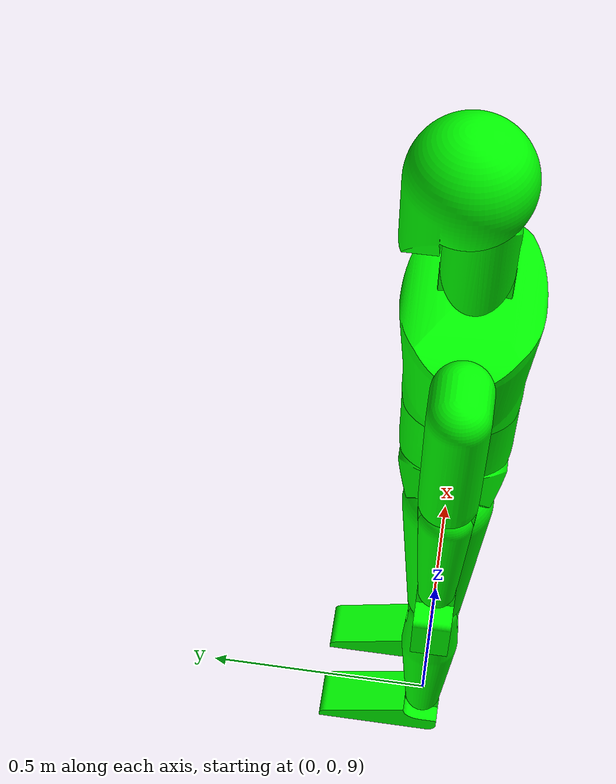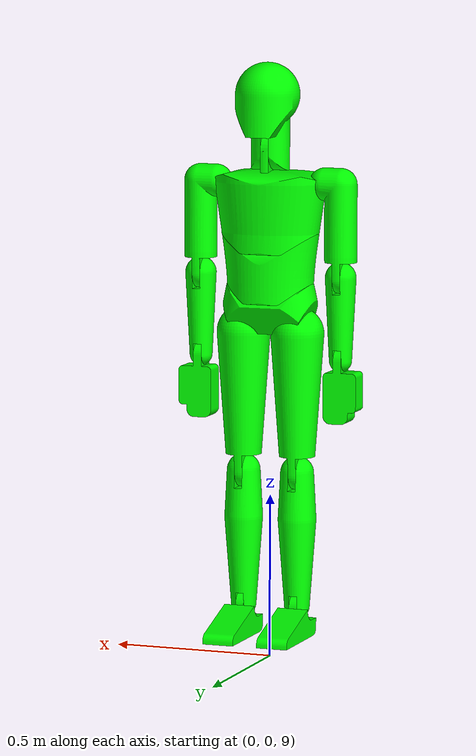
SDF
<?xml version="1.0" ?>
<!-- this was initially generated from ragdoll.urdf,
     but have sence been updated to turn off gravity for certain links
     and various tweaks -->

<sdf version="1.4">
    <model name="new_ragdoll">
        <pose>0.000000 0.000000 10.0 0.0 -1.570000 0.000000</pose>-->
        <link name="lower_body">
            <pose>0.000000 0.000000 0.000000 0.000000 -0.000000 0.000000</pose>
            <inertial>
                <pose>0.0762 0.000000 0.000000 0.000000 -0.000000 0.000000</pose>
                <inertia>
                    <ixx>0.1116</ixx>
                    <ixy>0.000000</ixy>
                    <ixz>0.000000</ixz>
                    <iyy>0.1028</iyy>
                    <iyz>0.000000</iyz>
                    <izz>0.1298</izz>
                </inertia>
                <mass>9.7</mass>
            </inertial>
            <collision name="lower_body_collision">
                <pose>0.000000 0.000000 0.000000 0.000000 -0.000000 0.000000</pose>
                <geometry>
                    <mesh>
                        <scale>1 1 1</scale>
                        <uri>model://Test_Lower_Body_m.STL</uri>
                    </mesh>
                </geometry>
                <surface>
                    <friction>
                        <ode>
                            <mu>1.000000</mu>
                            <mu2>1.000000</mu2>
                            <fdir1>0.000000 0.000000 0.000000</fdir1>
                            <slip1>0.000000</slip1>
                            <slip2>0.000000</slip2>
                        </ode>
                    </friction>
                    <bounce>
                        <restitution_coefficient>0.000000</restitution_coefficient>
                        <threshold>100000.000000</threshold>
                    </bounce>
                    <contact>
                        <ode>
                            <soft_cfm>0.0</soft_cfm>
                            <soft_erp>0.200000</soft_erp>
                            <kp>50000.000000</kp>
                            <kd>5000.000000</kd>-->
                            <max_vel>0.000000</max_vel>
                            <min_depth>0.001000</min_depth>
                        </ode>
                    </contact>
                </surface>
                <laser_retro>0.000000</laser_retro>
            </collision>
            <visual name="lower_body_visual">
                <pose>0.000000 0.000000 0.000000 0.000000 -0.000000 0.000000</pose>
                <geometry>
                    <mesh>
                        <scale>1 1 1</scale>
                        <uri>model://Test_Lower_Body_m.STL</uri>
                    </mesh>
                </geometry>
                <material>
                    <diffuse>0.0 1.0 0.0 1</diffuse>
                </material>
                <cast_shadows>0</cast_shadows>
                <laser_retro>0.000000</laser_retro>
                <transparency>0.000000</transparency>
            </visual>
            <sensor name='lower_body_tactile_sensor' type='contact'>
                <contact>
                    <collision>lower_body_collision</collision>
                    <topic>__default_topic__</topic>
                </contact>
                <plugin name="ros_tactile_plugin" filename="libros_tactile_plugin.so" />
                <always_on>1</always_on>
                <update_rate>100.0</update_rate>
                <visualize>false</visualize>
            </sensor>
            <gravity>1</gravity>
            <self_collide>0</self_collide>
            <kinematic>0</kinematic>
        </link>
        <link name="l_thigh">
            <pose>0.000000 0.000000 0.0864 0.000000 -0.000000 0.000000</pose>
            <inertial>
                <pose>-0.21336 0.000000 0.000000 0.000000 -0.000000 0.000000</pose>
                <inertia>
                    <ixx>0.1652</ixx>
                    <ixy>0.000000</ixy>
                    <ixz>0.000000</ixz>
                    <iyy>0.1652</iyy>
                    <iyz>0.000000</iyz>
                    <izz>0.0452</izz>
                </inertia>
                <mass>12.3</mass>
            </inertial>
            <collision name="l_thigh_collision">
                <pose>-0.21336 0.000000 -0.000000 0.000000 -0.000000 0.000000</pose>
                <geometry>
                    <mesh>
                        <scale>1 1 1</scale>
                        <uri>model://Test_Thigh_m.STL</uri>
                    </mesh>
                </geometry>
                <surface>
                    <friction>
                        <ode>
                            <mu>1.000000</mu>
                            <mu2>1.000000</mu2>
                            <fdir1>0.000000 0.000000 0.000000</fdir1>
                            <slip1>0.000000</slip1>
                            <slip2>0.000000</slip2>
                        </ode>
                    </friction>
                    <bounce>
                        <restitution_coefficient>0.000000</restitution_coefficient>
                        <threshold>100000.000000</threshold>
                    </bounce>
                    <contact>
                        <ode>
                            <soft_cfm>0.0</soft_cfm>
                            <soft_erp>0.200000</soft_erp>
                            <kp>50000.000000</kp>
                            <kd>5000.000000</kd>
                            <max_vel>0.000000</max_vel>
                            <min_depth>0.001000</min_depth>
                        </ode>
                    </contact>
                </surface>
                <laser_retro>0.000000</laser_retro>
            </collision>
            <visual name="l_thigh_visual">
                <pose>-0.21336 0.000000 -0.000000 0.000000 -0.000000 0.000000</pose>
                <geometry>
                    <mesh>
                        <scale>1 1 1</scale>
                        <uri>model://Test_Thigh_m.STL</uri>
                    </mesh>
                </geometry>
                <cast_shadows>0</cast_shadows>
                <laser_retro>0.000000</laser_retro>
                <transparency>0.000000</transparency>
                <material>
                    <diffuse>0.0 1.0 0.0 1</diffuse>
                </material>
            </visual>
            <sensor name='l_thigh_tactile_sensor' type='contact'>
                <contact>
                    <collision>l_thigh_collision</collision>
                    <topic>__default_topic__</topic>
                </contact>
                <plugin name="ros_tactile_plugin" filename="libros_tactile_plugin.so" />
                <always_on>1</always_on>
                <update_rate>100.0</update_rate>
                <visualize>false</visualize>
            </sensor>
            <gravity>1</gravity>
            <self_collide>0</self_collide>
            <kinematic>0</kinematic>
        </link>
        <link name="l_shin">
            <pose>-0.42672 -0.000000 0.0864 0.000000 -0.000000 0.000000</pose>
            <inertial>
                <pose>-0.20701 0.000000 -0.000000 0.000000 -0.000000 0.000000</pose>
                <inertia>
                    <ixx>0.0606</ixx>
                    <ixy>0.000000</ixy>
                    <ixz>0.000000</ixz>
                    <iyy>0.0606</iyy>
                    <iyz>0.000000</iyz>
                    <izz>0.0071</izz>
                </inertia>
                <mass>3.76</mass>
            </inertial>
            <collision name="l_shin_collision">
                <pose>-0.20701 0.000000 -0.000000 0.000000 -0.000000 0.000000</pose>
                <geometry>
                    <mesh>
                        <scale>1 1 1</scale>
                        <uri>model://Test_Shin_m.STL</uri>
                    </mesh>
                </geometry>
                <surface>
                    <friction>
                        <ode>
                            <mu>1.000000</mu>
                            <mu2>1.000000</mu2>
                            <fdir1>0.000000 0.000000 0.000000</fdir1>
                            <slip1>0.000000</slip1>
                            <slip2>0.000000</slip2>
                        </ode>
                    </friction>
                    <bounce>
                        <restitution_coefficient>0.000000</restitution_coefficient>
                        <threshold>100000.000000</threshold>
                    </bounce>
                    <contact>
                        <ode>
                            <soft_cfm>0.0</soft_cfm>
                            <soft_erp>0.200000</soft_erp>
                            <kp>50000.000000</kp>
                            <kd>5000.000000</kd>
                            <max_vel>0.000000</max_vel>
                            <min_depth>0.001000</min_depth>
                        </ode>
                    </contact>
                </surface>
                <laser_retro>0.000000</laser_retro>
            </collision>
            <visual name="l_shin_visual">
                <pose>-0.20701 0.000000 -0.000000 0.000000 -0.000000 0.000000</pose>
                <geometry>
                    <mesh>
                        <scale>1 1 1</scale>
                        <uri>model://Test_Shin_m.STL</uri>
                    </mesh>
                </geometry>
                <cast_shadows>0</cast_shadows>
                <laser_retro>0.000000</laser_retro>
                <transparency>0.000000</transparency>
                <material>
                    <diffuse>0.0 1.0 0.0 1</diffuse>
                </material>
            </visual>
            <sensor name='l_shin_tactile_sensor' type='contact'>
                <contact>
                    <collision>l_shin_collision</collision>
                    <topic>__default_topic__</topic>
                </contact>
                <plugin name="ros_tactile_plugin" filename="libros_tactile_plugin.so" />
                <always_on>1</always_on>
                <update_rate>100.0</update_rate>
                <visualize>false</visualize>
            </sensor>
            <gravity>1</gravity>
            <self_collide>0</self_collide>
            <kinematic>0</kinematic>
        </link>
        <link name="l_foot">
            <pose>-0.84074 -0.000000 0.0864 0.000000 -0.000000 0.000000</pose>
            <inertial>
                <pose>-0.059182 0.0508 -0.000000 0.000000 -0.000000 0.000000</pose>
                <inertia>
                    <ixx>0.0008</ixx>
                    <ixy>0.000000</ixy>
                    <ixz>0.000000</ixz>
                    <iyy>0.0044</iyy>
                    <iyz>0.000000</iyz>
                    <izz>0.0046</izz>
                </inertia>
                <mass>1.19</mass>
        </inertial>
            <collision name="l_foot_geom">
                <pose>0.000000 0.000000 -0.000000 0.000000 -0.000000 0.000000</pose>
                <geometry>
                    <mesh>
                        <scale>1 1 1</scale>
                        <uri>model://Test_Foot_m.STL</uri>
                    </mesh>
                </geometry>
                <surface>
                    <friction>
                        <ode>
                            <mu>1.000000</mu>
                            <mu2>1.000000</mu2>
                            <fdir1>0.000000 0.000000 0.000000</fdir1>
                            <slip1>0.000000</slip1>
                            <slip2>0.000000</slip2>
                        </ode>
                    </friction>
                    <bounce>
                        <restitution_coefficient>0.000000</restitution_coefficient>
                        <threshold>100000.000000</threshold>
                    </bounce>
                    <contact>
                        <ode>
                            <soft_cfm>0.0</soft_cfm>
                            <soft_erp>0.200000</soft_erp>
                            <kp>50000.000000</kp>
                            <kd>5000.000000</kd>
                            <max_vel>0.000000</max_vel>
                            <min_depth>0.001000</min_depth>
                        </ode>
                    </contact>
                </surface>
                <laser_retro>0.000000</laser_retro>
            </collision>
            <visual name="l_foot_geom_visual">
                <pose>0.000000 0.000000 -0.000000 0.000000 -0.000000 0.000000</pose>
                <geometry>
                    <mesh>
                        <scale>1 1 1</scale>
                        <uri>model://Test_Foot_m.STL</uri>
                    </mesh>
                </geometry>
                <cast_shadows>0</cast_shadows>
                <laser_retro>0.000000</laser_retro>
                <transparency>0.000000</transparency>
                <material>
                    <diffuse>0.0 1.0 0.0 1</diffuse>
                </material>
            </visual>
            <sensor name='l_foot_tactile_sensor' type='contact'>
                <contact>
                    <collision>l_foot_geom</collision>
                    <topic>__default_topic__</topic>
                </contact>
                <plugin name="ros_tactile_plugin" filename="libros_tactile_plugin.so" />
                <always_on>1</always_on>
                <update_rate>100.0</update_rate>
                <visualize>false</visualize>
            </sensor>
            <gravity>1</gravity>
            <self_collide>0</self_collide>
            <kinematic>0</kinematic>
        </link>
        <link name="r_thigh">
            <pose>0.000000 -0.000000 -0.0864 0.000000 -0.000000 0.000000</pose>
            <inertial>
                <pose>-0.21336 0.000000 0.000000 0.000000 -0.000000 0.000000</pose>
                <inertia>
                    <ixx>0.1652</ixx>
                    <ixy>0.000000</ixy>
                    <ixz>0.000000</ixz>
                    <iyy>0.1652</iyy>
                    <iyz>0.000000</iyz>
                    <izz>0.0452</izz>
                </inertia>
                <mass>12.3</mass>
            </inertial>
            <collision name="r_thigh_collision">
                <pose>-0.21336 0.000000 -0.000000 0.000000 -0.000000 0.000000</pose>
                <geometry>
                    <mesh>
                        <scale>1 1 1</scale>
                        <uri>model://Test_Thigh_m.STL</uri>
                    </mesh>
                </geometry>
                <surface>
                    <friction>
                        <ode>
                            <mu>1.000000</mu>
                            <mu2>1.000000</mu2>
                            <fdir1>0.000000 0.000000 0.000000</fdir1>
                            <slip1>0.000000</slip1>
                            <slip2>0.000000</slip2>
                        </ode>
                    </friction>
                    <bounce>
                        <restitution_coefficient>0.000000</restitution_coefficient>
                        <threshold>100000.000000</threshold>
                    </bounce>
                    <contact>
                        <ode>
                            <soft_cfm>0.0</soft_cfm>
                            <soft_erp>0.200000</soft_erp>
                            <kp>50000.000000</kp>
                            <kd>5000.000000</kd>
                            <max_vel>0.000000</max_vel>
                            <min_depth>0.001000</min_depth>
                        </ode>
                    </contact>
                </surface>
                <laser_retro>0.000000</laser_retro>
            </collision>
            <visual name="r_thigh_visual">
                <pose>-0.21336000 0.000000 -0.000000 0.000000 -0.000000 0.000000</pose>
                <geometry>
                    <mesh>
                        <scale>1 1 1</scale>
                        <uri>model://Test_Thigh_m.STL</uri>
                    </mesh>
                </geometry>
                <material>
                    <diffuse>0.0 1.0 0.0 1</diffuse>
                </material>
                <cast_shadows>0</cast_shadows>
                <laser_retro>0.000000</laser_retro>
                <transparency>0.000000</transparency>
            </visual>
            <sensor name='r_thigh_tactile_sensor' type='contact'>
                <contact>
                    <collision>r_thigh_collision</collision>
                    <topic>__default_topic__</topic>
                </contact>
                <plugin name="ros_tactile_plugin" filename="libros_tactile_plugin.so" />
                <always_on>1</always_on>
                <update_rate>100.0</update_rate>
                <visualize>false</visualize>
            </sensor>
            <gravity>1</gravity>
            <self_collide>0</self_collide>
            <kinematic>0</kinematic>
        </link>
        <link name="r_shin">
            <pose>-0.42672 -0.000000 -0.0864 0.000000 -0.000000 0.000000</pose>
            <inertial>
                <pose>-0.20701 0.000000 -0.000000 0.000000 -0.000000 0.000000</pose>
                <inertia>
                    <ixx>0.0606</ixx>
                    <ixy>0.000000</ixy>
                    <ixz>0.000000</ixz>
                    <iyy>0.0606</iyy>
                    <iyz>0.000000</iyz>
                    <izz>0.0071</izz>
                </inertia>
                <mass>3.76</mass>
            </inertial>
            <collision name="r_shin_collision">
                <pose>-0.20701 0.000000 -0.000000 0.000000 -0.000000 0.000000</pose>
                <geometry>
                    <mesh>
                        <scale>1 1 1</scale>
                        <uri>model://Test_Shin_m.STL</uri>
                    </mesh>
                </geometry>
                <surface>
                    <friction>
                        <ode>
                            <mu>1.000000</mu>
                            <mu2>1.000000</mu2>
                            <fdir1>0.000000 0.000000 0.000000</fdir1>
                            <slip1>0.000000</slip1>
                            <slip2>0.000000</slip2>
                        </ode>
                    </friction>
                    <bounce>
                        <restitution_coefficient>0.000000</restitution_coefficient>
                        <threshold>100000.000000</threshold>
                    </bounce>
                    <contact>
                        <ode>
                            <soft_cfm>0.0</soft_cfm>
                            <soft_erp>0.200000</soft_erp>
                            <kp>50000.000000</kp>
                            <kd>5000.000000</kd>
                            <max_vel>0.000000</max_vel>
                            <min_depth>0.001000</min_depth>
                        </ode>
                    </contact>
                </surface>
                <laser_retro>0.000000</laser_retro>
            </collision>
            <visual name="r_shin_visual">
                <pose>-0.20701 0.000000 -0.000000 0.000000 -0.000000 0.000000</pose>
                <geometry>
                    <mesh>
                        <scale>1 1 1</scale>
                        <uri>model://Test_Shin_m.STL</uri>
                    </mesh>
                </geometry>
                <material>
                    <diffuse>0.0 1.0 0.0 1</diffuse>
                </material>
                <cast_shadows>0</cast_shadows>
                <laser_retro>0.000000</laser_retro>
                <transparency>0.000000</transparency>
            </visual>
            <sensor name='r_shin_tactile_sensor' type='contact'>
                <contact>
                    <collision>r_shin_collision</collision>
                    <topic>__default_topic__</topic>
                </contact>
                <plugin name="ros_tactile_plugin" filename="libros_tactile_plugin.so" />
                <always_on>1</always_on>
                <update_rate>100.0</update_rate>
                <visualize>false</visualize>
            </sensor>
            <gravity>1</gravity>
            <self_collide>0</self_collide>
            <kinematic>0</kinematic>
        </link>
        <link name="r_foot">
            <pose>-0.84074 -0.000000 -0.0864 0.000000 -0.000000 0.000000</pose>
            <inertial>
                <pose>-0.059182 0.0508 -0.000000 0.000000 -0.000000 0.000000</pose>
                <inertia>
                    <ixx>0.0008</ixx>
                    <ixy>0.000000</ixy>
                    <ixz>0.000000</ixz>
                    <iyy>0.0044</iyy>
                    <iyz>0.000000</iyz>
                    <izz>0.0046</izz>
                </inertia>
                <mass>1.19</mass>
            </inertial>
            <collision name="r_foot_collision">
                <pose>0.000000 0.000000 -0.000000 0.000000 -0.000000 0.000000</pose>
                <geometry>
                    <mesh>
                        <scale>1 1 1</scale>
                        <uri>model://Test_Foot_m.STL</uri>
                    </mesh>
                </geometry>
                <surface>
                    <friction>
                        <ode>
                            <mu>1.000000</mu>
                            <mu2>1.000000</mu2>
                            <fdir1>0.000000 0.000000 0.000000</fdir1>
                            <slip1>0.000000</slip1>
                            <slip2>0.000000</slip2>
                        </ode>
                    </friction>
                    <bounce>
                        <restitution_coefficient>0.000000</restitution_coefficient>
                        <threshold>100000.000000</threshold>
                    </bounce>
                    <contact>
                        <ode>
                            <soft_cfm>0.0</soft_cfm>
                            <soft_erp>0.200000</soft_erp>
                            <kp>50000.000000</kp>
                            <kd>5000.000000</kd>
                            <max_vel>0.000000</max_vel>
                            <min_depth>0.001000</min_depth>
                        </ode>
                    </contact>
                </surface>
                <laser_retro>0.000000</laser_retro>
            </collision>
            <visual name="r_foot_visual">
                <pose>0.000000 0.000000 -0.000000 0.000000 -0.000000 0.000000</pose>
                <geometry>
                    <mesh>
                        <scale>1 1 1</scale>
                        <uri>model://Test_Foot_m.STL</uri>
                    </mesh>
                </geometry>
                <material>
                    <diffuse>0.0 1.0 0.0 1</diffuse>
                </material>
                <cast_shadows>0</cast_shadows>
                <laser_retro>0.000000</laser_retro>
                <transparency>0.000000</transparency>
            </visual>
            <sensor name='r_foot_tactile_sensor' type='contact'>
                <contact>
                    <collision>r_foot_collision</collision>
                    <topic>__default_topic__</topic>
                </contact>
                <plugin name="ros_tactile_plugin" filename="libros_tactile_plugin.so" />
                <always_on>1</always_on>
                <update_rate>100.0</update_rate>
                <visualize>false</visualize>
            </sensor>
            <gravity>1</gravity>
            <self_collide>0</self_collide>
            <kinematic>0</kinematic>
        </link>
        <link name="middle_body">
            <pose>0.05207 0.000000 0.000000 0.000000 -0.000000 0.000000</pose>
            <inertial>
                <pose>0.1765300 0.000000 0.000000 0.000000 -0.000000 0.000000</pose>
                <inertia>
                    <ixx>0.1116</ixx>
                    <ixy>0.000000</ixy>
                    <ixz>0.000000</ixz>
                    <iyy>0.1028</iyy>
                    <iyz>0.000000</iyz>
                    <izz>0.1298</izz>
                </inertia>
                <mass>14.2</mass>
            </inertial>
            <collision name="middle_body_collision">
                <pose>0.000000 0.000000 0.000000 0.000000 -0.000000 0.000000</pose>
                <geometry>
                    <mesh>
                        <scale>1 1 1</scale>
                        <uri>model://Test_Middle_Body_m.STL</uri>
                    </mesh>
                </geometry>
                <surface>
                    <friction>
                        <ode>
                            <mu>1.000000</mu>
                            <mu2>1.000000</mu2>
                            <fdir1>0.000000 0.000000 0.000000</fdir1>
                            <slip1>0.000000</slip1>
                            <slip2>0.000000</slip2>
                        </ode>
                    </friction>
                    <bounce>
                        <restitution_coefficient>0.000000</restitution_coefficient>
                        <threshold>100000.000000</threshold>
                    </bounce>
                    <contact>
                        <ode>
                            <soft_cfm>0.0</soft_cfm>
                            <soft_erp>0.200000</soft_erp>
                            <kp>50000.000000</kp>
                            <kd>5000.000000</kd>
                            <max_vel>0.000000</max_vel>
                            <min_depth>0.001000</min_depth>
                        </ode>
                    </contact>
                </surface>
                <laser_retro>0.000000</laser_retro>
            </collision>
            <visual name="middle_body_visual">
                <pose>0.000000 0.000000 0.000000 0.000000 -0.000000 0.000000</pose>
                <geometry>
                    <mesh>
                        <scale>1 1 1</scale>
                        <uri>model://Test_Middle_Body_m.STL</uri>
                    </mesh>
                </geometry>
                <material>
                    <diffuse>0.0 1.0 0.0 1</diffuse>
                </material>
                <cast_shadows>0</cast_shadows>
                <laser_retro>0.000000</laser_retro>
                <transparency>0.000000</transparency>
            </visual>
            <sensor name='middle_body_tactile_sensor' type='contact'>
                <contact>
                    <collision>middle_body_collision</collision>
                    <topic>__default_topic__</topic>
                </contact>
                <plugin name="ros_tactile_plugin" filename="libros_tactile_plugin.so" />
                <always_on>1</always_on>
                <update_rate>100.0</update_rate>
                <visualize>false</visualize>
            </sensor>
            <gravity>1</gravity>
            <self_collide>0</self_collide>
            <kinematic>0</kinematic>
        </link>
        <link name="upper_body">
            <pose>0.2032 0.000000 0.000000 0.000000 -0.000000 0.000000</pose>
            <inertial>
                <pose>0.1778 0.000000 0.000000 0.000000 -0.000000 0.000000</pose>
                <inertia>
                    <ixx>0.1116</ixx>
                    <ixy>0.000000</ixy>
                    <ixz>0.000000</ixz>
                    <iyy>0.1028</iyy>
                    <iyz>0.000000</iyz>
                    <izz>0.1298</izz>
                </inertia>
                <mass>12.82</mass>
            </inertial>
            <collision name="upper_body_collision">
                <pose>0.000000 0.000000 0.000000 0.000000 -0.000000 0.000000</pose>
                <geometry>
                    <mesh>
                        <scale>1 1 1</scale>
                        <uri>model://Test_Upper_Body_m.STL</uri>
                    </mesh>
                </geometry>
                <surface>
                    <friction>
                        <ode>
                            <mu>1.000000</mu>
                            <mu2>1.000000</mu2>
                            <fdir1>0.000000 0.000000 0.000000</fdir1>
                            <slip1>0.000000</slip1>
                            <slip2>0.000000</slip2>
                        </ode>
                    </friction>
                    <bounce>
                        <restitution_coefficient>0.000000</restitution_coefficient>
                        <threshold>100000.000000</threshold>
                    </bounce>
                    <contact>
                        <ode>
                            <soft_cfm>0.0</soft_cfm>
                            <soft_erp>0.200000</soft_erp>
                            <kp>50000.000000</kp>
                            <kd>5000.000000</kd>
                            <max_vel>0.000000</max_vel>
                            <min_depth>0.001000</min_depth>
                        </ode>
                    </contact>
                </surface>
                <laser_retro>0.000000</laser_retro>
            </collision>
            <visual name="upper_body_visual">
                <pose>0.000000 0.000000 0.000000 0.000000 -0.000000 0.000000</pose>
                <geometry>
                    <mesh>
                        <scale>1 1 1</scale>
                        <uri>model://Test_Upper_Body_m.STL</uri>
                    </mesh>
                </geometry>
                <material>
                    <diffuse>0.0 1.0 0.0 1</diffuse>
                </material>
                <cast_shadows>0</cast_shadows>
                <laser_retro>0.000000</laser_retro>
                <transparency>0.000000</transparency>
            </visual>
            <sensor name='upper_body_tactile_sensor' type='contact'>
                <contact>
                    <collision>upper_body_collision</collision>
                    <topic>__default_topic__</topic>
                </contact>
                <plugin name="ros_tactile_plugin" filename="libros_tactile_plugin.so" />
                <always_on>1</always_on>
                <update_rate>100.0</update_rate>
                <visualize>false</visualize>
            </sensor>
            <gravity>1</gravity>
            <self_collide>0</self_collide>
            <kinematic>0</kinematic>
        </link>
        <link name="l_arm">
            <pose>0.4572 0.000000 0.17526 0 -0.000000 0.000000</pose>
            <inertial>
                <pose>-0.14097 0.000000 0.04953 0.000000 -0.000000 0.000000</pose>
                <inertia>
                    <ixx>0.0141</ixx>
                    <ixy>0.000000</ixy>
                    <ixz>0.000000</ixz>
                    <iyy>0.0141</iyy>
                    <iyz>0.000000</iyz>
                    <izz>0.0029</izz>
                </inertia>
                <mass>2.35</mass>
            </inertial>
            <collision name="l_arm_collision">
                <pose>-0.14097 0.000000 0.04953 3.14 -0.000000 0.000000</pose>
                <geometry>
                    <mesh>
                        <scale>1 1 1</scale>
                        <uri>model://Test_Arm_m.STL</uri>
                    </mesh>
                </geometry>
                <surface>
                    <friction>
                        <ode>
                            <mu>1.000000</mu>
                            <mu2>1.000000</mu2>
                            <fdir1>0.000000 0.000000 0.000000</fdir1>
                            <slip1>0.000000</slip1>
                            <slip2>0.000000</slip2>
                        </ode>
                    </friction>
                    <bounce>
                        <restitution_coefficient>0.000000</restitution_coefficient>
                        <threshold>100000.000000</threshold>
                    </bounce>
                    <contact>
                        <ode>
                            <soft_cfm>0.0</soft_cfm>
                            <soft_erp>0.200000</soft_erp>
                            <kp>50000.000000</kp>
                            <kd>5000.000000</kd>
                            <max_vel>0.000000</max_vel>
                            <min_depth>0.001000</min_depth>
                        </ode>
                    </contact>
                </surface>
                <laser_retro>0.000000</laser_retro>
            </collision>
            <visual name="l_arm_visual">
                <pose>-0.14097 0.000000 0.04953 3.14 -0.000000 0.000000</pose>
                <geometry>
                    <mesh>
                        <scale>1 1 1</scale>
                        <uri>model://Test_Arm_m.STL</uri>
                    </mesh>
                </geometry>
                <material>
                    <diffuse>0.0 1.0 0.0 1</diffuse>
                </material>
                <cast_shadows>0</cast_shadows>
                <laser_retro>0.000000</laser_retro>
                <transparency>0.000000</transparency>
            </visual>
            <gravity>1</gravity>
            <self_collide>0</self_collide>
            <kinematic>0</kinematic>
        </link>
        <link name="l_wrist">
            <pose>0.1752 0.000000 0.22479 0.000000 -0.000000 0.000000</pose>
            <inertial>
                <pose>-0.125700 -0.000000 0.000000 0.000000 -0.000000 0.000000</pose>
                <inertia>
                    <ixx>0.009</ixx>
                    <ixy>0.000000</ixy>
                    <ixz>0.000000</ixz>
                    <iyy>0.009</iyy>
                    <iyz>0.000000</iyz>
                    <izz>0.0014</izz>
                </inertia>
                <mass>1.4</mass>
            </inertial>
            <collision name="l_wrist_collision">
                <pose>-0.125700 -0.000000 0.000000 3.140000 -0.000000 0.000000</pose>
                <geometry>
                    <mesh>
                        <scale>1 1 1</scale>
                        <uri>model://Test_Wrist_m.STL</uri>
                    </mesh>
                </geometry>
                <surface>
                    <friction>
                        <ode>
                            <mu>1.000000</mu>
                            <mu2>1.000000</mu2>
                            <fdir1>0.000000 0.000000 0.000000</fdir1>
                            <slip1>0.000000</slip1>
                            <slip2>0.000000</slip2>
                        </ode>
                    </friction>
                    <bounce>
                        <restitution_coefficient>0.000000</restitution_coefficient>
                        <threshold>100000.000000</threshold>
                    </bounce>
                    <contact>
                        <ode>
                            <soft_cfm>0.0</soft_cfm>
                            <soft_erp>0.200000</soft_erp>
                            <kp>50000.000000</kp>
                            <kd>5000.000000</kd>
                            <max_vel>0.000000</max_vel>
                            <min_depth>0.001000</min_depth>
                        </ode>
                    </contact>
                </surface>
                <laser_retro>0.000000</laser_retro>
            </collision>
            <visual name="l_wrist_visual">
                <pose>-0.125700 -0.000000 0.000000 3.140000 -0.000000 0.000000</pose>
                <geometry>
                    <mesh>
                        <scale>1 1 1</scale>
                        <uri>model://Test_Wrist_m.STL</uri>
                    </mesh>
                </geometry>
                <material>
                    <diffuse>0.0 1.0 0.0 1</diffuse>
                </material>
                <cast_shadows>0</cast_shadows>
                <laser_retro>0.000000</laser_retro>
                <transparency>0.000000</transparency>
            </visual>
            <gravity>1</gravity>
            <self_collide>0</self_collide>
            <kinematic>0</kinematic>
        </link>
        <link name="l_hand">
            <pose>-0.0763 0.000000 0.22479 0.000000 -0.000000 0.000000</pose>
            <inertial>
                <pose>-0.105000 -0.000000 -0.000000 0.000000 -0.000000 0.000000</pose>
                <inertia>
                    <ixx>0.0013</ixx>
                    <ixy>0.000000</ixy>
                    <ixz>0.000000</ixz>
                    <iyy>0.0011</iyy>
                    <iyz>0.000000</iyz>
                    <izz>0.0004</izz>
                </inertia>
                <mass>0.5</mass>
            </inertial>
            <collision name="l_hand_collision">
                <pose>0.000000 -0.000000 -0.000000 3.140000 -0.000000 0.000000</pose>
                <geometry>
                    <mesh>
                        <scale>1 1 1</scale>
                        <uri>model://Test_Hand_m.STL</uri>
                    </mesh>
                </geometry>
                <surface>
                    <friction>
                        <ode>
                            <mu>1.000000</mu>
                            <mu2>1.000000</mu2>
                            <fdir1>0.000000 0.000000 0.000000</fdir1>
                            <slip1>0.000000</slip1>
                            <slip2>0.000000</slip2>
                        </ode>
                    </friction>
                    <bounce>
                        <restitution_coefficient>0.000000</restitution_coefficient>
                        <threshold>100000.000000</threshold>
                    </bounce>
                    <contact>
                        <ode>
                            <soft_cfm>0.0</soft_cfm>
                            <soft_erp>0.200000</soft_erp>
                            <kp>50000.000000</kp>
                            <kd>5000.000000</kd>
                            <max_vel>0.000000</max_vel>
                            <min_depth>0.001000</min_depth>
                        </ode>
                    </contact>
                </surface>
                <laser_retro>0.000000</laser_retro>
            </collision>
            <visual name="l_hand_visual">
                <pose>0.000000 -0.000000 -0.000000 3.140000 -0.000000 0.000000</pose>
                <geometry>
                    <mesh>
                        <scale>1 1 1</scale>
                        <uri>model://Test_Hand_m.STL</uri>
                    </mesh>
                </geometry>
                <material>
                    <diffuse>0.0 1.0 0.0 1</diffuse>
                </material>
                <cast_shadows>0</cast_shadows>
                <laser_retro>0.000000</laser_retro>
                <transparency>0.000000</transparency>
            </visual>
            <gravity>1</gravity>
            <self_collide>0</self_collide>
            <kinematic>0</kinematic>
        </link>
        <link name="neck">
            <pose>0.55372 0.000000 0.000000 0.000000 -0.000000 0.000000</pose>
            <inertial>
                <pose>0.065405 0.0 0.000000 0.000000 -0.000000 0.000000</pose>
                <inertia>
                    <ixx>0.0018</ixx>
                    <ixy>0.000000</ixy>
                    <ixz>0.000000</ixz>
                    <iyy>0.0022</iyy>
                    <iyz>0.000000</iyz>
                    <izz>0.0028</izz>
                </inertia>
                <mass>1.03</mass>
            </inertial>
            <collision name="neck_collision">
                <pose>0.000000 0.000000 0.000000 0.000000 -0.000000 0.000000</pose>
                <geometry>
                    <mesh>
                        <scale>1 1 1</scale>
                        <uri>model://Test_Neck_m.STL</uri>
                    </mesh>
                </geometry>
                <surface>
                    <friction>
                        <ode>
                            <mu>1.000000</mu>
                            <mu2>1.000000</mu2>
                            <fdir1>0.000000 0.000000 0.000000</fdir1>
                            <slip1>0.000000</slip1>
                            <slip2>0.000000</slip2>
                        </ode>
                    </friction>
                    <bounce>
                        <restitution_coefficient>0.000000</restitution_coefficient>
                        <threshold>100000.000000</threshold>
                    </bounce>
                    <contact>
                        <ode>
                            <soft_cfm>0.0</soft_cfm>
                            <soft_erp>0.200000</soft_erp>
                            <kp>50000.000000</kp>
                            <kd>5000.000000</kd>
                            <max_vel>0.000000</max_vel>
                            <min_depth>0.001000</min_depth>
                        </ode>
                    </contact>
                </surface>
                <laser_retro>0.000000</laser_retro>
            </collision>
            <visual name="neck_geom_visual">
                <pose>0.000000 0.000000 0.000000 0.000000 -0.000000 0.000000</pose>
                <geometry>
                    <mesh>
                        <scale>1 1 1</scale>
                        <uri>model://Test_Neck_m.STL</uri>
                    </mesh>
                </geometry>
                <material>
                    <diffuse>0.0 1.0 0.0 1</diffuse>
                </material>
                <cast_shadows>0</cast_shadows>
                <laser_retro>0.000000</laser_retro>
                <transparency>0.000000</transparency>
            </visual>
            <sensor name='neck_tactile_sensor' type='contact'>
                <contact>
                    <collision>neck_collision</collision>
                    <topic>__default_topic__</topic>
                </contact>
                <plugin name="ros_tactile_plugin" filename="libros_tactile_plugin.so" />
                <always_on>1</always_on>
                <update_rate>100.0</update_rate>
                <visualize>false</visualize>
            </sensor>
            <gravity>1</gravity>
            <self_collide>0</self_collide>
            <kinematic>0</kinematic>
        </link>
        <link name="head">
            <pose>0.6261 0.000000 0.000000 0.000000 0.000 0.000000</pose>
            <inertial>
                <pose>0.09779 0.0508 0.000000 0.000000 -0.000000 0.000000</pose>
                <inertia>
                    <ixx>0.0206</ixx>
                    <ixy>0.000000</ixy>
                    <ixz>0.000000</ixz>
                    <iyy>0.0235</iyy>
                    <iyz>0.000000</iyz>
                    <izz>0.0153</izz>
                </inertia>
                <mass>6.02</mass>
            </inertial>
            <collision name="head_collision">
                <pose>0.000000 0.000000 0.000000 0.000000 3.140000 0.000000</pose>
                <geometry>
                    <mesh>
                        <scale>1 1 1</scale>
                        <uri>model://Test_Head_m.STL</uri>
                    </mesh>
                </geometry>
                <surface>
                    <friction>
                        <ode>
                            <mu>1.000000</mu>
                            <mu2>1.000000</mu2>
                            <fdir1>0.000000 0.000000 0.000000</fdir1>
                            <slip1>0.000000</slip1>
                            <slip2>0.000000</slip2>
                        </ode>
                    </friction>
                    <bounce>
                        <restitution_coefficient>0.000000</restitution_coefficient>
                        <threshold>100000.000000</threshold>
                    </bounce>
                    <contact>
                        <ode>
                            <soft_cfm>0.0</soft_cfm>
                            <soft_erp>0.200000</soft_erp>
                            <kp>50000.000000</kp>
                            <kd>5000.000000</kd>
                            <max_vel>0.000000</max_vel>
                            <min_depth>0.001000</min_depth>
                        </ode>
                    </contact>
                </surface>
                <laser_retro>0.000000</laser_retro>
            </collision>
            <visual name="head_visual">
                <pose>0.000000 0.000000 0.000000 0.000000 3.140000 0.000000</pose>
                <geometry>
                    <mesh>
                        <scale>1 1 1</scale>
                        <uri>model://Test_Head_m.STL</uri>
                    </mesh>
                </geometry>
                <material>
                    <diffuse>0.0 1.0 0.0 1</diffuse>
                </material>
                <cast_shadows>0</cast_shadows>
                <laser_retro>0.000000</laser_retro>
                <transparency>0.000000</transparency>
            </visual>
            <sensor name='head_tactile_sensor' type='contact'>
                <contact>
                    <collision>head_collision</collision>
                    <topic>__default_topic__</topic>
                </contact>
                <plugin name="ros_tactile_plugin" filename="libros_tactile_plugin.so" />
                <always_on>1</always_on>
                <update_rate>100.0</update_rate>
                <visualize>false</visualize>
            </sensor>
            <gravity>1</gravity>
            <self_collide>0</self_collide>
            <kinematic>0</kinematic>
        </link>
        <link name="r_arm">
            <pose>0.4572 0.000000 -0.17526 0.000000 -0.000000 0.000000</pose>
            <inertial>
                <pose>-0.141005 0.000000 -0.04953 0.0 -0.000000 0.000000</pose>
                <inertia>
                    <ixx>0.0141</ixx>
                    <ixy>0.000000</ixy>
                    <ixz>0.000000</ixz>
                    <iyy>0.0141</iyy>
                    <iyz>0.000000</iyz>
                    <izz>0.0029</izz>
                </inertia>
                <mass>2.35</mass>
            </inertial>
            <collision name="r_arm_collision">
                <pose>-0.141005 0.000000 -0.04953 0.0 -0.000000 0.000000</pose>
                <geometry>
                    <mesh>
                        <scale>1 1 1</scale>
                        <uri>model://Test_Arm_m.STL</uri>
                    </mesh>
                </geometry>
                <surface>
                    <friction>
                        <ode>
                            <mu>1.000000</mu>
                            <mu2>1.000000</mu2>
                            <fdir1>0.000000 0.000000 0.000000</fdir1>
                            <slip1>0.000000</slip1>
                            <slip2>0.000000</slip2>
                        </ode>
                    </friction>
                    <bounce>
                        <restitution_coefficient>0.000000</restitution_coefficient>
                        <threshold>100000.000000</threshold>
                    </bounce>
                    <contact>
                        <ode>
                            <soft_cfm>0.0</soft_cfm>
                            <soft_erp>0.200000</soft_erp>
                            <kp>50000.000000</kp>
                            <kd>5000.000000</kd>
                            <max_vel>0.000000</max_vel>
                            <min_depth>0.001000</min_depth>
                        </ode>
                    </contact>
                </surface>
                <laser_retro>0.000000</laser_retro>
            </collision>
            <visual name="r_arm_visual">
                <pose>-0.141005 0.000000 -0.04953 0.0 -0.000000 0.000000</pose>
                <geometry>
                    <mesh>
                        <scale>1 1 1</scale>
                        <uri>model://Test_Arm_m.STL</uri>
                    </mesh>
                </geometry>
                <material>
                    <diffuse>0.0 1.0 0.0 1</diffuse>
                </material>
                <cast_shadows>0</cast_shadows>
                <laser_retro>0.000000</laser_retro>
                <transparency>0.000000</transparency>
            </visual>
            <gravity>1</gravity>
            <self_collide>0</self_collide>
            <kinematic>0</kinematic>
        </link>
        <link name="r_wrist">
            <pose>0.1752 0.000000 -0.22479 0.000000 -0.000000 0.000000</pose>
            <inertial>
                <pose>-0.125700 -0.000000 0.000000 0.000000 -0.000000 0.000000</pose>
                <inertia>
                    <ixx>0.009</ixx>
                    <ixy>0.000000</ixy>
                    <ixz>0.000000</ixz>
                    <iyy>0.009</iyy>
                    <iyz>0.000000</iyz>
                    <izz>0.0014</izz>
                </inertia>
                <mass>1.4</mass>
            </inertial>
            <collision name="r_wrist_collision">
                <pose>-0.125700 -0.000000 0.000000 0.000000 -0.000000 0.000000</pose>
                <geometry>
                    <mesh>
                        <scale>1 1 1</scale>
                        <uri>model://Test_Wrist_m.STL</uri>
                    </mesh>
                </geometry>
                <surface>
                    <friction>
                        <ode>
                            <mu>1.000000</mu>
                            <mu2>1.000000</mu2>
                            <fdir1>0.000000 0.000000 0.000000</fdir1>
                            <slip1>0.000000</slip1>
                            <slip2>0.000000</slip2>
                        </ode>
                    </friction>
                    <bounce>
                        <restitution_coefficient>0.000000</restitution_coefficient>
                        <threshold>100000.000000</threshold>
                    </bounce>
                    <contact>
                        <ode>
                            <soft_cfm>0.0</soft_cfm>
                            <soft_erp>0.200000</soft_erp>
                            <kp>50000.000000</kp>
                            <kd>5000.000000</kd>
                            <max_vel>0.000000</max_vel>
                            <min_depth>0.001000</min_depth>
                        </ode>
                    </contact>
                </surface>
                <laser_retro>0.000000</laser_retro>
            </collision>
            <visual name="r_wrist_visual">
                <pose>-0.125700 -0.000000 0.000000 0.000000 -0.000000 0.000000</pose>
                <geometry>
                    <mesh>
                        <scale>1 1 1</scale>
                        <uri>model://Test_Wrist_m.STL</uri>
                    </mesh>
                </geometry>
                <material>
                    <diffuse>0.0 1.0 0.0 1</diffuse>
                </material>
                <cast_shadows>0</cast_shadows>
                <laser_retro>0.000000</laser_retro>
                <transparency>0.000000</transparency>
            </visual>
            <gravity>1</gravity>
            <self_collide>0</self_collide>
            <kinematic>0</kinematic>
        </link>
        <link name="r_hand">
            <pose>-0.0763 0.000000 -0.22479 0.000000 -0.000000 0.000000</pose>
            <inertial>
                <pose>-0.105000 -0.000000 -0.000000 0.000000 -0.000000 0.000000</pose>
                <inertia>
                    <ixx>0.0013</ixx>
                    <ixy>0.000000</ixy>
                    <ixz>0.000000</ixz>
                    <iyy>0.0011</iyy>
                    <iyz>0.000000</iyz>
                    <izz>0.0004</izz>
                </inertia>
                <mass>0.5</mass>
            </inertial>
            <collision name="r_hand_collision">
                <pose>0.000000 -0.000000 -0.000000 0.000000 -0.000000 0.000000</pose>
                <geometry>
                    <mesh>
                        <scale>1 1 1</scale>
                        <uri>model://Test_Hand_m.STL</uri>
                    </mesh>
                </geometry>
                <surface>
                    <friction>
                        <ode>
                            <mu>1.000000</mu>
                            <mu2>1.000000</mu2>
                            <fdir1>0.000000 0.000000 0.000000</fdir1>
                            <slip1>0.000000</slip1>
                            <slip2>0.000000</slip2>
                        </ode>
                    </friction>
                    <bounce>
                        <restitution_coefficient>0.000000</restitution_coefficient>
                        <threshold>100000.000000</threshold>
                    </bounce>
                    <contact>
                        <ode>
                            <soft_cfm>0.0</soft_cfm>
                            <soft_erp>0.200000</soft_erp>
                            <kp>50000.000000</kp>
                            <kd>5000.000000</kd>
                            <max_vel>0.000000</max_vel>
                            <min_depth>0.001000</min_depth>
                        </ode>
                    </contact>
                </surface>
                <laser_retro>0.000000</laser_retro>
            </collision>
            <visual name="r_hand_visual">
                <pose>0.000000 -0.000000 -0.000000 0.000000 -0.000000 0.000000</pose>
                <geometry>
                    <mesh>
                        <scale>1 1 1</scale>
                        <uri>model://Test_Hand_m.STL</uri>
                    </mesh>
                </geometry>
                <material>
                    <diffuse>0.0 1.0 0.0 1</diffuse>
                </material>
                <cast_shadows>0</cast_shadows>
                <laser_retro>0.000000</laser_retro>
                <transparency>0.000000</transparency>
            </visual>
            <gravity>1</gravity>
            <self_collide>0</self_collide>
            <kinematic>0</kinematic>
        </link>
<!--Virtual Link-->
    <link name="v_r_arm">
        <pose>0.4572 0.000000 -0.17526 0.000000 -0.000000 0.000000</pose>
        <collision name="v_r_arm_collision">
            <geometry>
                <box>
                    <size>0.0 0.0 0.0</size>
                </box>
            </geometry>
        </collision>
    </link>
    <link name="v_l_arm">
        <pose>0.4572 0.000000 0.17526 3.140000 -0.000000 0.000000</pose>
        <collision name="v_l_arm_collision">
            <geometry>
                <box>
                    <size>0.0 0.0 0.0</size>
                </box>
            </geometry>
        </collision>
    </link>
    <link name="v_l_thigh">
        <pose>0.000000 0.000000 0.0864 0.000000 -0.000000 0.000000</pose>
        <collision name="v_l_thigh_collision">
            <geometry>
                <box>
                    <size>0.0 0.0 0.0</size>
                </box>
            </geometry>
        </collision>
    </link>
    <link name="v_r_thigh">
        <pose>0.000000 0.000000 -0.0864 0.000000 -0.000000 0.000000</pose>
        <collision name="v_r_thigh_collision">
            <geometry>
                <box>
                    <size>0.0 0.0 0.0</size>
                </box>
            </geometry>
        </collision>
    </link>
        <joint name="l_thigh_joint" type="revolute">
            <child>v_l_thigh</child>
            <parent>lower_body</parent>
            <axis>
                <xyz>0.000000 0.000000 1.000000</xyz>
                <limit>
                    <lower>-2.051</lower>
                    <upper>0.785</upper>
                </limit>
                <dynamics>
                    <damping>1.000000</damping>
                </dynamics>
            </axis>
    </joint>
        <joint name="L_thigh_joint2" type="revolute">
            <child>l_thigh</child>
            <parent>v_l_thigh</parent>
            <axis>
                <xyz>0.000000 1.000000 0.000000</xyz>
                <limit>
                    <lower>0.</lower>
                    <upper>0.</upper>
                </limit>
                <dynamics>
                    <damping>1.000000</damping>
                </dynamics>
            </axis>
    </joint>
        <joint name="l_shin_joint" type="revolute">
        <child>l_shin</child>
            <parent>l_thigh</parent>
            <axis>
                <xyz>0.000000 0.000000 1.000000</xyz>
                <limit>
            <lower>0.</lower>
                    <upper>1.824</upper>
                </limit>
                <dynamics>
                    <damping>1.000000</damping>
                </dynamics>
            </axis>
        </joint>
        <joint name="l_foot_joint" type="revolute">
        <child>l_foot</child>
            <parent>l_shin</parent>
            <axis>
                <xyz>0.000000 0.000000 1.000000</xyz>
                <limit>
                    <lower>-0.410</lower>
                    <upper>0.633</upper>
        </limit>
                <dynamics>
                    <damping>1.000000</damping>
                </dynamics>
            </axis>
        </joint>
        <joint name="r_thigh_joint" type="revolute">
        <child>v_r_thigh</child>
            <parent>lower_body</parent>
            <axis>
                <xyz>0.000000 0.000000 1.000000</xyz>
                <limit>
                    <lower>-2.051</lower>
                    <upper>0.785</upper>
        </limit>
                <dynamics>
                    <damping>1.000000</damping>
                </dynamics>
            </axis>
    </joint>
       <joint name="R_thigh_joint2" type="revolute">
            <child>r_thigh</child>
            <parent>v_r_thigh</parent>
            <axis>
                <xyz>0.000000 1.000000 0.000000</xyz>
                <limit>
                    <lower>0.</lower>
                    <upper>0.</upper>
                </limit>
                <dynamics>
                    <damping>1.000000</damping>
                </dynamics>
            </axis>
    </joint>
        <joint name="r_shin_joint" type="revolute">
        <child>r_shin</child>
            <parent>r_thigh</parent>
            <axis>
                <xyz>0.000000 0.000000 1.000000</xyz>
                <limit>
                    <lower>0.</lower>
                    <upper>1.824</upper>
        </limit>
                <dynamics>
                    <damping>1.000000</damping>
                </dynamics>
            </axis>
        </joint>
        <joint name="r_foot_joint" type="revolute">
        <child>r_foot</child>
            <parent>r_shin</parent>
            <axis>
                <xyz>0.000000 0.000000 1.000000</xyz>
                <limit>
                    <lower>-0.410</lower>
                    <upper>0.633</upper>
        </limit>
                <dynamics>
                    <damping>1.000000</damping>
                </dynamics>
            </axis>
        </joint>
        <joint name="middle_body_joint" type="revolute">
        <child>middle_body</child>
            <parent>lower_body</parent>
            <axis>
                <xyz>0.000000 0.000000 1.000000</xyz>
                <limit>
                    <lower>-0.262</lower>
                    <upper>0.611</upper>
                </limit>
                <dynamics>
                    <damping>0.000000</damping>
                </dynamics>
            </axis>
        </joint>
    <joint name="upper_body_joint" type="revolute">
            <child>upper_body</child>
            <parent>middle_body</parent>
            <axis>
                <xyz>0.000000 0.000000 1.000000</xyz>
                <limit>
                    <lower>-0.262</lower>
                    <upper>0.611</upper>
                </limit>
                <dynamics>
                    <damping>0.000000</damping>
                </dynamics>
            </axis>
        </joint>
        <joint name="l_arm_joint" type="revolute">
        <child>v_l_arm</child>
            <parent>upper_body</parent>
            <axis>
                <xyz>0.000000 0.000000 1.000000</xyz>
                <limit>
            <lower>-3.094</lower>
                    <upper>1.025</upper>
                </limit>
                <dynamics>
                    <damping>1.000000</damping>
                </dynamics>
            </axis>
        </joint>
        <joint name="L_arm_joint2" type="revolute">
        <child>l_arm</child>
            <parent>v_l_arm</parent>
            <axis>
                <xyz>0.000000 1.000000 0.000000</xyz>
                <limit>
            <lower>-0.0</lower>
                    <upper>0.</upper>
                </limit>
                <dynamics>
                    <damping>1.000000</damping>
                </dynamics>
            </axis>
    </joint>
        <joint name="l_wrist_joint" type="revolute">
        <child>l_wrist</child>
            <parent>l_arm</parent>
            <axis>
                <xyz>0.000000 0.000000 1.000000</xyz>
                <limit>
            <lower>-2.378</lower>
                    <upper>0.</upper>
                </limit>
                <dynamics>
                    <damping>1.000000</damping>
                </dynamics>
            </axis>
        </joint>
        <joint name="l_hand_joint" type="revolute">
        <child>l_hand</child>
            <parent>l_wrist</parent>
            <axis>
                <xyz>0.000000 0.000000 1.000000</xyz>
                <limit>
            <lower>0.</lower>
                    <upper>0.</upper>
                </limit>
                <dynamics>
                    <damping>1.000000</damping>
                </dynamics>
            </axis>
        </joint>
        <joint name="neck_joint" type="revolute">
        <child>neck</child>
            <parent>upper_body</parent>
            <axis>
                <xyz>0.000000 0.000000 1.000000</xyz>
                <limit>
            <lower>0.000</lower>
                    <upper>0.000</upper>
                </limit>
                <dynamics>
                    <damping>0.000000</damping>
                </dynamics>
            </axis>
        </joint>
        <joint name="head_joint" type="revolute">
        <child>head</child>
            <parent>neck</parent>
            <axis>
                <xyz>0.000000 0.000000 1.000000</xyz>
                <limit>
            <lower>0.000</lower>
                    <upper>0.0000</upper>
                </limit>
                <dynamics>
                    <damping>0.000000</damping>
                </dynamics>
            </axis>
        </joint>
        <joint name="R_arm_joint2" type="revolute">
        <child>r_arm</child>
            <parent>v_r_arm</parent>
            <axis>
                <xyz>0.000000 1.000000 0.000000</xyz>
                <limit>
                    <lower>0.0</lower>
                    <upper>0.0</upper>
        </limit>
                <dynamics>
                    <damping>1.000000</damping>
                </dynamics>
            </axis>
        </joint>
        <joint name="r_arm_joint" type="revolute">
        <child>v_r_arm</child>
            <parent>upper_body</parent>
            <axis>
                <xyz>0.000000 0.000000 1.000000</xyz>
                <limit>
                    <lower>-3.094</lower>
                    <upper>1.025</upper>
        </limit>
                <dynamics>
                    <damping>1.000000</damping>
                </dynamics>
            </axis>
        </joint>
        <joint name="r_wrist_joint" type="revolute">
        <child>r_wrist</child>
            <parent>r_arm</parent>
            <axis>
                <xyz>0.000000 0.000000 1.000000</xyz>
                <limit>
                    <lower>0.</lower>
                    <upper>0.</upper>
        </limit>
                <dynamics>
                    <damping>1.000000</damping>
                </dynamics>
            </axis>
        </joint>
        <joint name="r_hand_joint" type="revolute">
        <child>r_hand</child>
            <parent>r_wrist</parent>
            <axis>
                <xyz>0.000000 0.000000 1.000000</xyz>
                <limit>
                    <lower>0.</lower>
                    <upper>0.</upper>
        </limit>
                <dynamics>
                    <damping>1.000000</damping>
                </dynamics>
            </axis>
        </joint>
        <static>0</static>
    </model>
</sdf>
